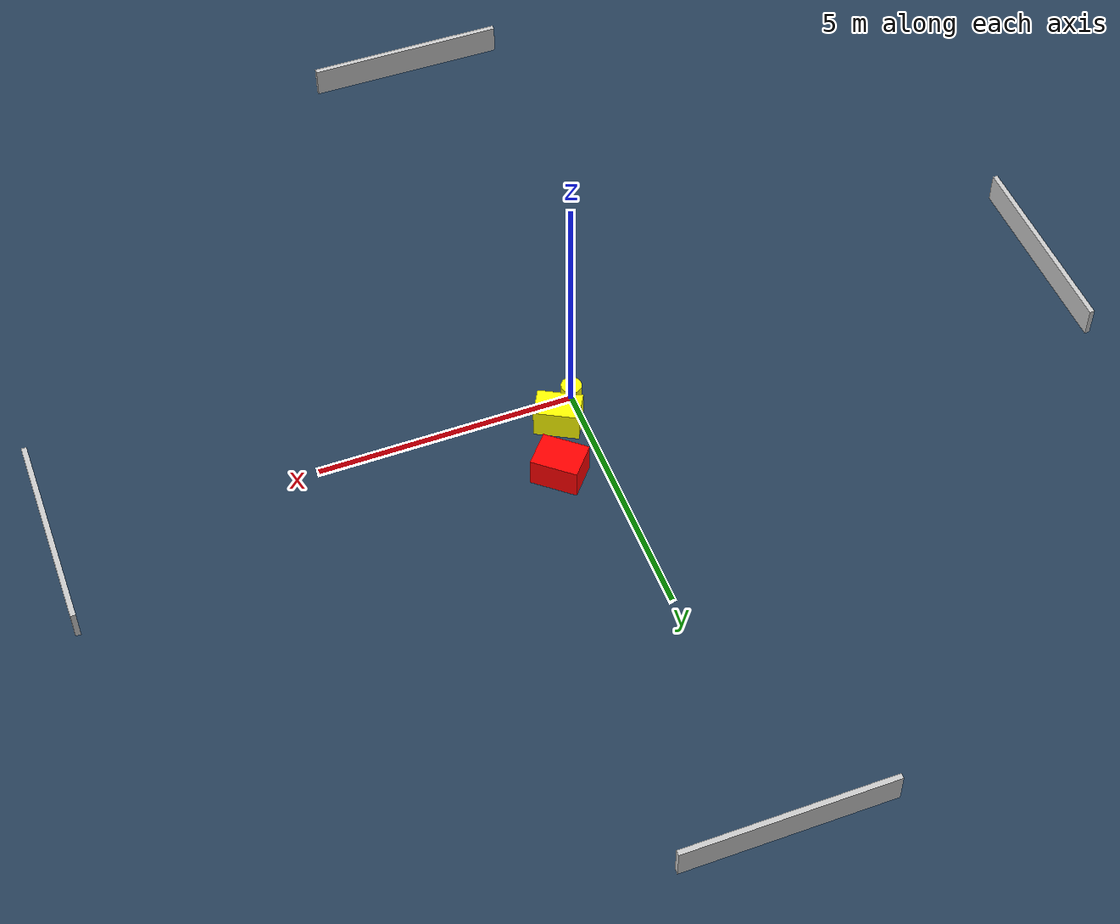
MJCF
<?xml version="1.0" ?>
<mujoco model="generated_environment">
  <option timestep="0.01" integrator="RK4" cone="elliptic"/>
  <default>
    <geom density="1"/>
  </default>
  <asset>
    <texture builtin="gradient" height="3072" name="skybox" rgb1="0.3 0.5 0.7" rgb2="0 0 0" type="skybox" width="512"/>
    <texture builtin="checker" height="300" name="groundplane" rgb1="0.2 0.3 0.4" rgb2="0.1 0.2 0.3" type="2d" width="300"/>
    <material name="groundplane" reflectance="0.2" texrepeat="5 5" texture="groundplane"/>
  </asset>
  <worldbody>
    <light dir="0 0 -1" directional="true" pos="0 0 1.5"/>
    <geom condim="3" friction="0.5 0.005 0.001" material="groundplane" name="floor" pos="0 0 0" size="0 0 0.05" type="plane"/>
    <body name="walls">
      <geom name="wall_1" condim="4" pos="-10.0 0.0 0.3" rgba="0.800000011920929 0.800000011920929 0.800000011920929 1.0" size="0.05 2.0 0.3" type="box"/>
      <geom name="wall_2" condim="4" pos="10.0 0.0 0.3" rgba="0.800000011920929 0.800000011920929 0.800000011920929 1.0" size="0.05 2.0 0.3" type="box"/>
      <geom name="wall_3" condim="4" pos="0.0 -10.0 0.3" rgba="0.800000011920929 0.800000011920929 0.800000011920929 1.0" size="2.0 0.05 0.3" type="box"/>
      <geom name="wall_4" condim="4" pos="0.0 10.0 0.3" rgba="0.800000011920929 0.800000011920929 0.800000011920929 1.0" size="2.0 0.05 0.3" type="box"/>
    </body>
    <body name="robot">
      <joint name="joint_x" type="slide" pos="0 0 0" axis="1 0 0"/>
      <joint name="joint_y" type="slide" pos="0 0 0" axis="0 1 0"/>
      <geom name="robot" type="cylinder" pos="0.0 0.0 0.2" size="0.2 0.2 0.0" mass="5.0" friction="1.0 0.005 0.0001" condim="4" rgba="1.0 1.0 0.0 1.0"/>
    </body>
    <body name="obstacle_1_movable">
      <geom name="obstacle_1_movable" condim="4" pos="0.45913813916539686 0.5112929069429732 0.3" euler="0 0 240.9022324093031" friction="0.0 0.005 0.001" rgba="1.0 1.0 0.0 1.0" size="0.2860339217839275 0.43245397015587067 0.3" type="box" mass="0.1"/>
      <joint type="free"/>
    </body>
    <body name="obstacle_2_static">
      <geom name="obstacle_2_static" condim="4" pos="0.8539295535852074 1.6502955839946118 0.3" euler="0 0 49.463561030066906" friction="0.0 0.005 0.001" rgba="1.0 0.0 0.0 1.0" size="0.3520443438645295 0.453974261577285 0.3" type="box"/>
    </body>
  </worldbody>
  <actuator>
    <motor name="actuator_x" joint="joint_x" gear="1" ctrlrange="-1 1"/>
    <motor name="actuator_y" joint="joint_y" gear="1" ctrlrange="-1 1"/>
  </actuator>
</mujoco>
